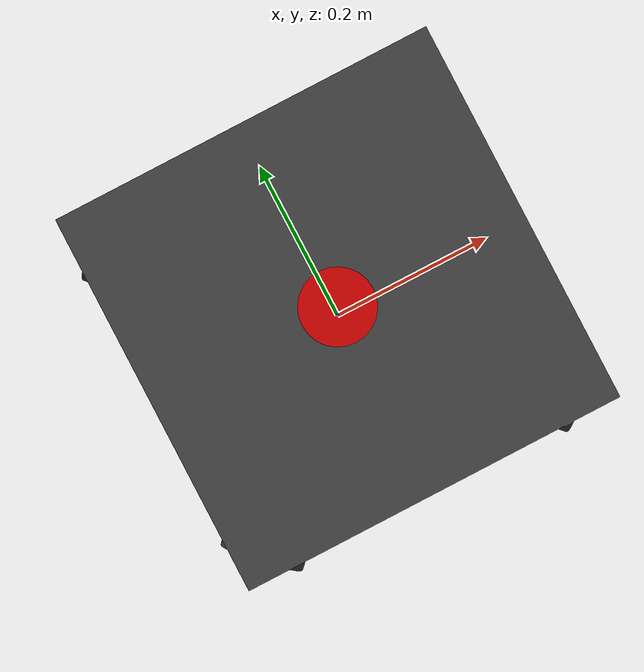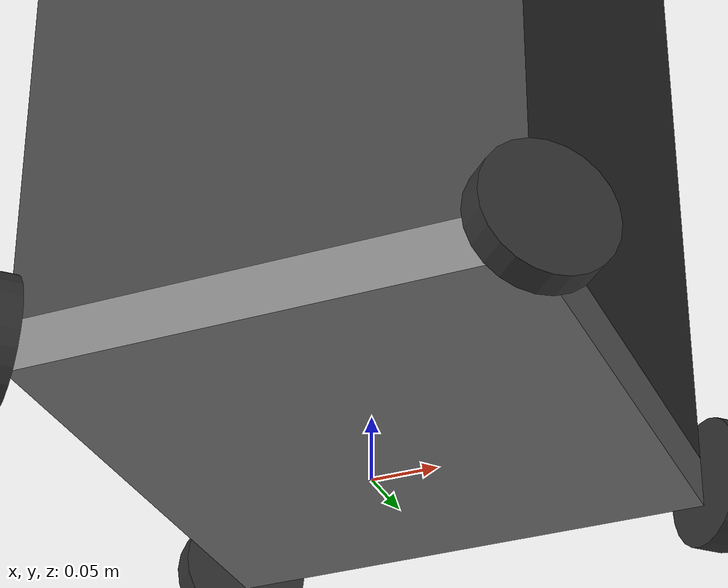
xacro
<?xml version="1.0"?>
<robot xmlns:xacro="http://www.ros.org/wiki/xacro" name="xdrive">

    <!-- ==================== PROPERTIES ==================== -->
    <xacro:property name="PI" value="3.14159265359" />

    <!-- Dimensi sasis -->
    <xacro:property name="base_length" value="0.38" />
    <xacro:property name="base_width" value="0.38" />
    <xacro:property name="base_height" value="0.04" />

    <!-- Dimensi & Posisi roda -->
    <xacro:property name="wheel_radius" value="0.05" />
    <xacro:property name="wheel_width" value="0.025" />
    <xacro:property name="wheel_offset_x" value="0.20" />
    <xacro:property name="wheel_offset_y" value="0.20" />

    <!-- Massa -->
    <xacro:property name="base_mass" value="2.0" />
    <xacro:property name="wheel_mass" value="0.2" />

    <!-- ==================== MACROS INERTIAL ==================== -->
    <xacro:macro name="box_inertial" params="mass x y z">
        <inertial>
            <mass value="${mass}" />
            <inertia
                ixx="${mass*(y*y + z*z)/12.0}" ixy="0.0" ixz="0.0"
                iyy="${mass*(x*x + z*z)/12.0}" iyz="0.0"
                izz="${mass*(x*x + y*y)/12.0}" />
        </inertial>
    </xacro:macro>

    <xacro:macro name="cylinder_inertial" params="mass radius length">
        <inertial>
            <mass value="${mass}" />
            <inertia
                ixx="${mass*(3*radius*radius + length*length)/12.0}" ixy="0.0" ixz="0.0"
                iyy="${mass*(3*radius*radius + length*length)/12.0}" iyz="0.0"
                izz="${mass*radius*radius/2.0}" />
        </inertial>
    </xacro:macro>

    <!-- ==================== MACRO RODA X-DRIVE ==================== -->
    <xacro:macro name="xdrive_wheel" params="name x_reflect y_reflect yaw_angle">
        <!-- LINK RODA -->
        <link name="${name}_wheel">
            <visual>
                <!-- Geometri roda murni berada di origin lokal (0 0 0) -->
                <origin xyz="0 0 0" rpy="${PI/2} 0 0" />
                <geometry>
                    <cylinder radius="${wheel_radius}" length="${wheel_width}" />
                </geometry>
                <material name="dark_gray">
                    <color rgba="0.2 0.2 0.2 1.0" />
                </material>
            </visual>
            <collision>
                <origin xyz="0 0 0" rpy="${PI/2} 0 0" />
                <geometry>
                    <cylinder radius="${wheel_radius}" length="${wheel_width}" />
                </geometry>
            </collision>
            <xacro:cylinder_inertial mass="${wheel_mass}" radius="${wheel_radius}"
                length="${wheel_width}" />
        </link>

        <!-- Sifat Gesekan Omni-wheel: Grip di arah rolling (mu1=1.0), Bebas geser di arah roller/aksial (mu2=0.0) -->
        <gazebo reference="${name}_wheel">
            <mu1>1.0</mu1>
            <mu2>0.0</mu2>
            <fdir1>1 0 0</fdir1>
        </gazebo>

        <!-- JOINT RODA (Menghubungkan ke base_link) -->
        <joint name="${name}_wheel_joint" type="continuous">
            <parent link="base_link" />
            <child link="${name}_wheel" />
            <!-- Posisi x, y, z dan rotasi sudut X-Drive dialokasikan di joint -->
            <origin
                xyz="${x_reflect * wheel_offset_x} ${y_reflect * wheel_offset_y} 0.0"
                rpy="0 0 ${yaw_angle}" />
            <!-- Sumbu putar roda (lokal Y relatif terhadap orientasi roda) -->
            <axis xyz="0 1 0" />
        </joint>
    </xacro:macro>

    <!-- ==================== BASE LINKS ==================== -->
    <link name="base_footprint" />

    <joint name="base_footprint_joint" type="fixed">
        <parent link="base_footprint" />
        <child link="base_link" />
        <origin xyz="0 0 ${wheel_radius}" rpy="0 0 0" />
    </joint>

    <link name="base_link">
        <visual>
            <origin xyz="0 0 0" rpy="0 0 0" />
            <geometry>
                <box size="${base_length} ${base_width} ${base_height}" />
            </geometry>
            <material name="gray">
                <color rgba="0.5 0.5 0.5 1.0" />
            </material>
        </visual>
        <collision>
            <origin xyz="0 0 0" rpy="0 0 0" />
            <geometry>
                <box size="${base_length} ${base_width} ${base_height}" />
            </geometry>
        </collision>
        <xacro:box_inertial mass="${base_mass}" x="${base_length}" y="${base_width}"
            z="${base_height}" />
    </link>

    <link name="mid_link">
        <visual>
            <origin xyz="0 0 0" rpy="0 0 0" />
            <geometry>
                <box size="0.38 0.38 0.5" />
            </geometry>
            <material name="gray">
                <color rgba="0.25 0.25 0.25 1.0" />
            </material>
        </visual>
    </link>

    <joint name="mid_joint" type="fixed">
        <parent link="base_link" />
        <child link="mid_link" />
        <origin xyz="0 0 0.27" rpy="0 0 0" />
    </joint>

    <!-- ==================== PEMANGGILAN 4 RODA X-DRIVE ==================== -->
    <!-- Front Left (135 Derajat) -->
    <xacro:xdrive_wheel name="front_left" x_reflect="1" y_reflect="1" yaw_angle="${135*PI/180}" />

    <!-- Front Right (45 Derajat) -->
    <xacro:xdrive_wheel name="front_right" x_reflect="1" y_reflect="-1" yaw_angle="${45*PI/180}" />

    <!-- Rear Left (-135 Derajat) -->
    <xacro:xdrive_wheel name="rear_left" x_reflect="-1" y_reflect="1" yaw_angle="${-135*PI/180}" />

    <!-- Rear Right (-45 Derajat) -->
    <xacro:xdrive_wheel name="rear_right" x_reflect="-1" y_reflect="-1" yaw_angle="${-45*PI/180}" />

    <!-- ==================== SENSOR LIDAR ==================== -->
    <link name="laser">
        <visual>
            <origin xyz="0 0 0" rpy="0 0 0" />
            <geometry>
                <cylinder radius="0.035" length="0.04" />
            </geometry>
            <material name="red">
                <color rgba="0.8 0.0 0.0 1.0" />
            </material>
        </visual>
        <collision>
            <origin xyz="0 0 0" rpy="0 0 0" />
            <geometry>
                <cylinder radius="0.035" length="0.04" />
            </geometry>
        </collision>
        <xacro:cylinder_inertial mass="0.1" radius="0.035" length="0.04" />
    </link>

    <joint name="laser_joint" type="fixed">
        <parent link="base_link" />
        <child link="laser" />
        <!-- Diletakkan di atas mid_link dengan clearance yang aman (mid_link top = 0.52m) -->
        <origin xyz="0 0 0.58" rpy="0 0 0" />
    </joint>

    <gazebo reference="laser">
        <sensor name="rplidar_sensor" type="gpu_lidar">
            <pose>0 0 0 0 0 0</pose>
            <topic>scan</topic>
            <frame_id>laser</frame_id>
            <gz_frame_id>laser</gz_frame_id>
            <update_rate>10.0</update_rate>
            <ray>
                <scan>
                    <horizontal>
                        <samples>360</samples>
                        <resolution>1</resolution>
                        <min_angle>-3.14159</min_angle>
                        <max_angle>3.14159</max_angle>
                    </horizontal>
                </scan>
                <range>
                    <!-- Batas min 0.28m mencegah ray mengenai sudut sasis/mid_link robot (radius sasis ~0.27m) -->
                    <min>0.28</min>
                    <max>12.0</max>
                    <resolution>0.01</resolution>
                </range>
            </ray>
            <always_on>true</always_on>
            <visualize>true</visualize>
        </sensor>
    </gazebo>

    <!-- ==================== GAZEBO HARMONIC SYSTEM PLUGINS ==================== -->
    <gazebo>
        <!-- Kontrol Kecepatan Holonomik (Menerima /cmd_vel: vx, vy, wz) -->
        <plugin
            filename="gz-sim-velocity-control-system"
            name="gz::sim::systems::VelocityControl">
            <link_name>base_link</link_name>
            <topic>cmd_vel</topic>
        </plugin>

        <!-- Odometri Publisher (Mengeluarkan /odom & TF odom -> base_footprint) -->
        <plugin
            filename="gz-sim-odometry-publisher-system"
            name="gz::sim::systems::OdometryPublisher">
            <odom_frame>odom</odom_frame>
            <robot_base_frame>base_footprint</robot_base_frame>
            <odom_topic>odom</odom_topic>
            <tf_topic>tf</tf_topic>
            <odom_publish_frequency>50</odom_publish_frequency>
        </plugin>

        <!-- Joint State Publisher untuk roda -->
        <plugin
            filename="gz-sim-joint-state-publisher-system"
            name="gz::sim::systems::JointStatePublisher">
        </plugin>

        <!-- Joint Controllers untuk memutar 4 Roda X-Drive di Gazebo Harmonic -->
        <plugin
            filename="gz-sim-joint-controller-system"
            name="gz::sim::systems::JointController">
            <joint_name>front_left_wheel_joint</joint_name>
            <sub_topic>joint/front_left_wheel_joint/cmd_vel</sub_topic>
        </plugin>
        <plugin
            filename="gz-sim-joint-controller-system"
            name="gz::sim::systems::JointController">
            <joint_name>front_right_wheel_joint</joint_name>
            <sub_topic>joint/front_right_wheel_joint/cmd_vel</sub_topic>
        </plugin>
        <plugin
            filename="gz-sim-joint-controller-system"
            name="gz::sim::systems::JointController">
            <joint_name>rear_left_wheel_joint</joint_name>
            <sub_topic>joint/rear_left_wheel_joint/cmd_vel</sub_topic>
        </plugin>
        <plugin
            filename="gz-sim-joint-controller-system"
            name="gz::sim::systems::JointController">
            <joint_name>rear_right_wheel_joint</joint_name>
            <sub_topic>joint/rear_right_wheel_joint/cmd_vel</sub_topic>
        </plugin>
    </gazebo>
</robot>
